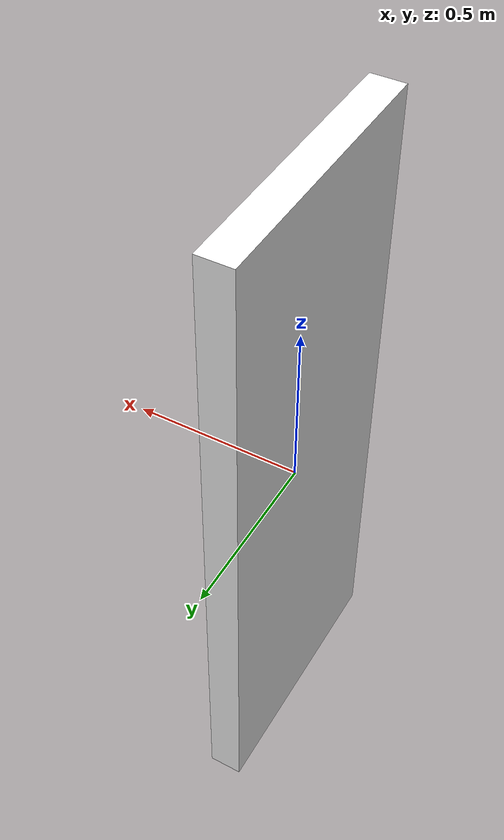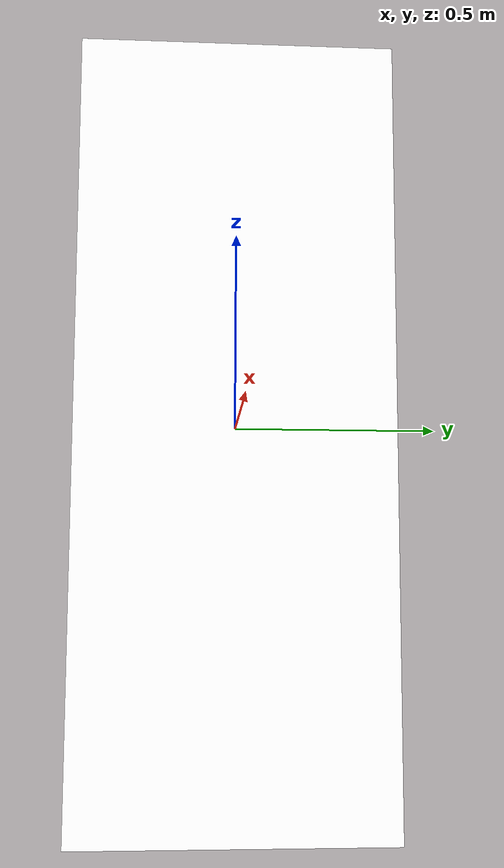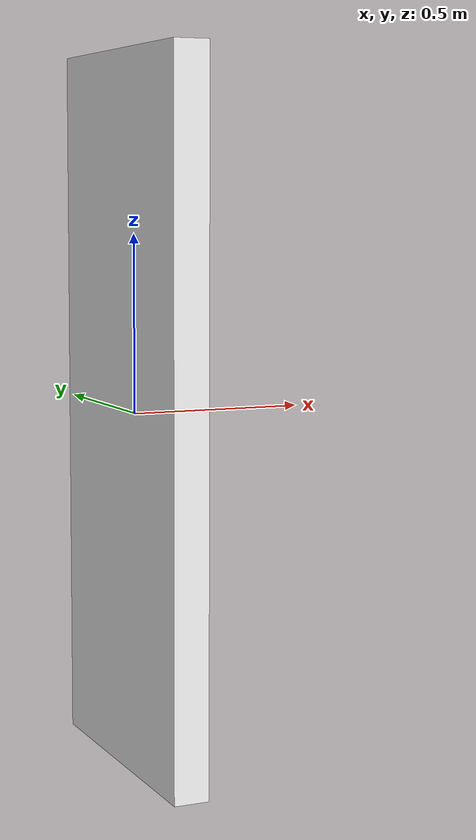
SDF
<?xml version="1.0"?>
<sdf version='1.4'>
  <model name='door_08x2m'>
    <link name="link">
      <visual name="visual">
        <geometry>
          <box>
            <size>0.1 0.8 2</size>
          </box>
        </geometry>
        <material>
          <pbr>
            <metal>
              <albedo_map>textures/door_08x2m.png</albedo_map>
            <metalness>0.0</metalness><roughness>0.70</roughness>
            </metal>
          </pbr>
          <ambient>1 1 1 1</ambient>
          <diffuse>1 1 1 1</diffuse>
          <specular>1 1 1 1</specular>
          <emissive>0 0 0 1</emissive>
        </material>
        <cast_shadows>1</cast_shadows>
        <transparency>0</transparency>
      </visual>
    </link>
    <static>1</static>
    <allow_auto_disable>1</allow_auto_disable>
  </model>
</sdf>
